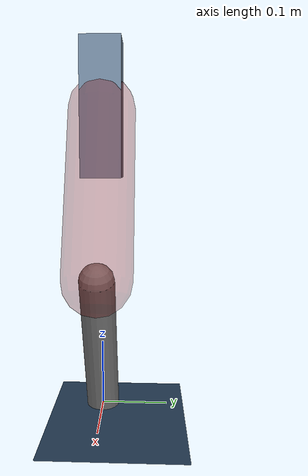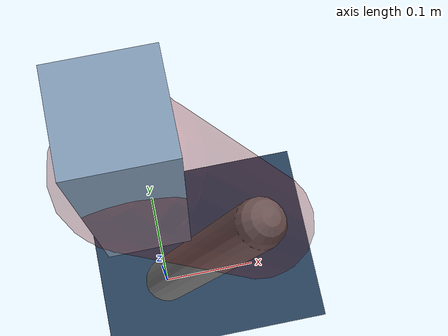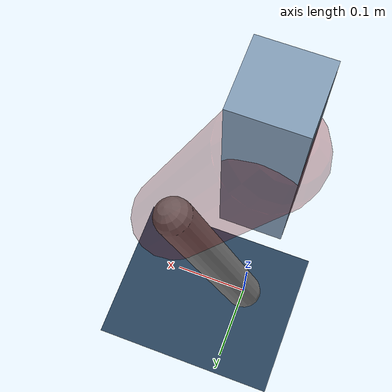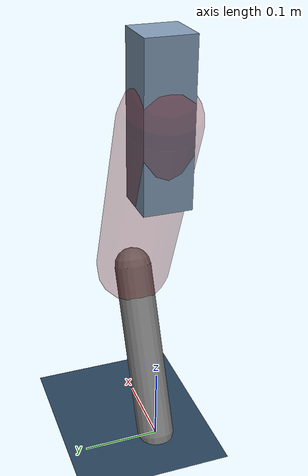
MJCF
<mujoco model="Hopper2D">
	<compiler inertiafromgeom="true" angle="radian" />
	<option timestep="0.001" integrator="implicit" cone="elliptic" solver="Newton" tolerance="1e-10" />

	<default>
		<geom contype="1" conaffinity="1" condim="3" friction="2 0.005 0.0001" solref="0.005 1" />
		<joint limited="true" damping="0.1" />
	</default>

	<asset>
		<texture name="skybox" type="skybox" builtin="gradient" rgb1=".4 .6 .8" rgb2="0 0 0" width="800" height="800" />
		<texture name="grid" type="2d" builtin="checker" rgb1=".1 .2 .3" rgb2=".2 .3 .4" width="300" height="300" mark="edge" markrgb=".2 .3 .4" />
		<material name="ground" texture="grid" texrepeat="1 1" texuniform="true" reflectance="0.1" />
		<material name="leg" rgba="0.5 0.6 0.7 1" />
	</asset>

	<worldbody>

		<geom name="floor" type="plane" size="5 5 0.25" material="ground" />

		<light directional="false" diffuse="0.8 0.8 0.8" specular="0.3 0.3 0.3" pos="0 0 2" dir="0 0 -1" />
		<light mode="targetbodycom" target="base" directional="false" diffuse="0.8 0.8 0.8" specular="0.3 0.3 0.3" pos="0 0 2" dir="0 0 -1" />

		<camera name="fixed" pos="0 -2 1" xyaxes="1 0 0 0 0 1" />
		<camera name="tracking" mode="trackcom" pos="0 -3 1" />

		<body name="root" pos="0 0 0.45613153163396003">
			<joint name="slide_x" type="slide" axis="1 0 0" range="-100 100" />
			<joint name="slide_z" type="slide" axis="0 0 1" range="0 10" />

			<body name="base" pos="0 0 0">
				<geom name="torso" type="box" size="0.03 0.03 0.1" mass="2.47" material="leg" />

				<body name="link1" pos="0 0 0" euler="0 1.185951174586178 0">
					<joint type="hinge" axis="0 -1 0" pos="0 0 0" name="hinge1" limited="true" range="-3.14 3.14" stiffness="0" damping="0.1" />
					<geom name="thigh" type="capsule" fromto="0 0 0 0.25633861772915867 0 0" size="0.05" rgba="0.5 0 0 0.3" mass="0.8728804060958125" />

					<body name="link2" pos="0.25633861772915867 0 0" euler="0 0.79963899532652 0">
						<joint type="hinge" axis="0 -1 0" pos="0 0 0" name="hinge2" limited="true" range="-3.14 3.14" stiffness="0" damping="0.1" />
						<geom name="shank" type="capsule" fromto="0 0 0 0.23879210691783204 0 0" size="0.025" mass="0.43323368553426567" />

					</body>
				</body>
			</body>
		</body>
	</worldbody>

	<actuator>
		<motor name="torque1" joint="hinge1" ctrlrange="-103.15618195459822 103.15618195459822" ctrllimited="true" gear="1" />
		<motor name="torque2" joint="hinge2" ctrlrange="-24.174390121672705 24.174390121672705" ctrllimited="true" gear="1" />
	</actuator>
</mujoco>
